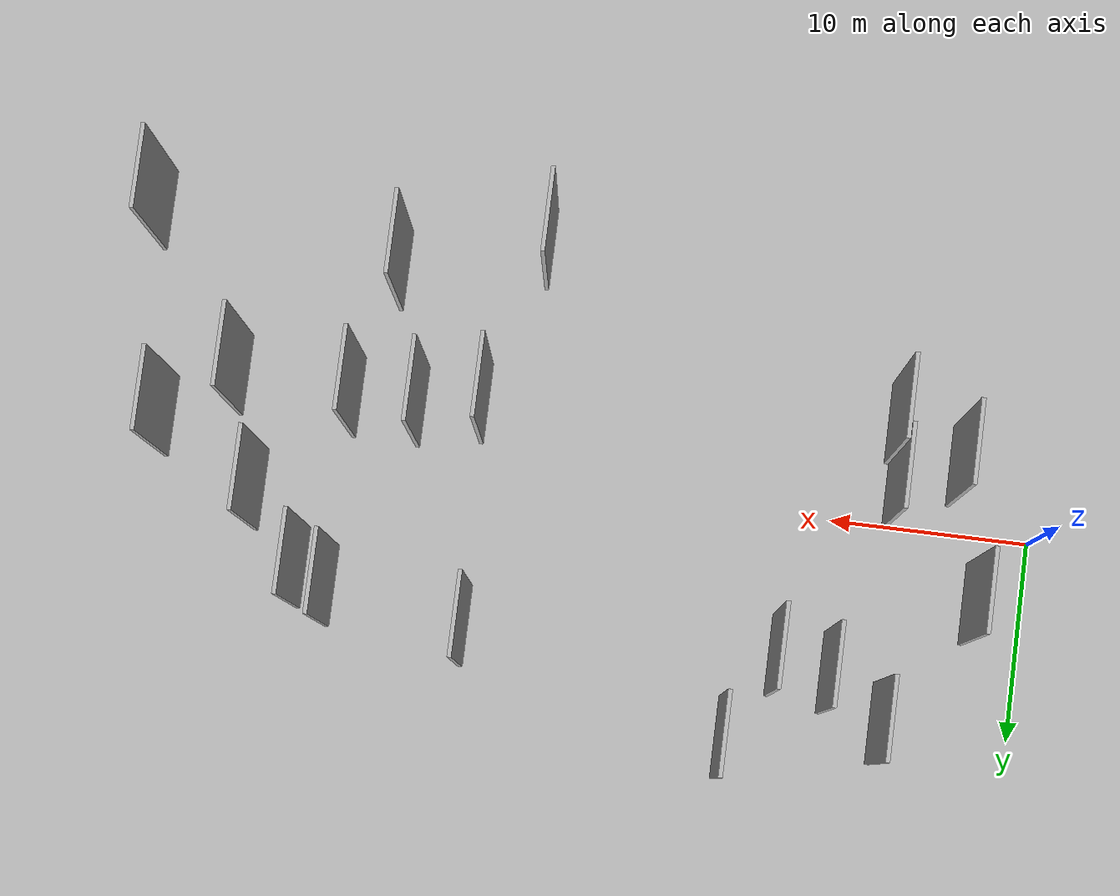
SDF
<?xml version="1.0" encoding="utf-8"?>

<sdf version="1.6">

   <world name="default">

      <gui fullscreen="0">

         <camera name="user_camera">

            <pose>-15 0 4.57585 0 0 0</pose>

            <view_controller>orbit</view_controller>

         </camera>

      </gui>

      <scene>

         <sky>

           <clouds>

             <speed>12</speed>

           </clouds>

         </sky>

         <ambient>0.4 0.4 0.4 1</ambient>

         <background>0.7 0.7 0.7 1</background>

         <shadows>1</shadows>

      </scene>

      <gravity>0 0 -9.8066</gravity>

      <magnetic_field>6e-06 2.3e-05 -4.2e-05</magnetic_field>

      <physics default="0" name="default_physics" type="ode">

         <ode>

            <solver>

               <type>quick</type>

               <iters>10</iters>

               <sor>1.0</sor>

               <use_dynamic_moi_rescaling>0</use_dynamic_moi_rescaling>

            </solver>

            <constraints>

               <cfm>0</cfm>

               <erp>0.2</erp>

               <contact_max_correcting_vel>100</contact_max_correcting_vel>

               <contact_surface_layer>0.001</contact_surface_layer>

            </constraints>

         </ode>

         <max_step_size>0.004</max_step_size>

         <real_time_factor>1</real_time_factor>

         <real_time_update_rate>250</real_time_update_rate>

      </physics>

      <light name="sun" type="directional">

         <cast_shadows>1</cast_shadows>

         <pose>0 0 10 0 0 0</pose>

         <diffuse>0.8 0.8 0.8 1</diffuse>

         <specular>0.2 0.2 0.2 1</specular>

         <attenuation>

            <range>1000</range>

            <constant>0.9</constant>

            <linear>0.01</linear>

            <quadratic>0.001</quadratic>

         </attenuation>

         <direction>-0.5 0.1 -0.9</direction>

      </light>

      <include>

         <name>ground_plane_1</name>

         <uri>model://HANNAS_ground_plane</uri>

         <pose>0 0 0  0 0 0</pose>

      </include>

      <include>

         <name>ground_plane_2</name>

         <uri>model://HANNAS_ground_plane</uri>

         <pose>100 0 0  0 0 0</pose>

      </include>

      <model name="HANNAS_wall_1">

         <static>1</static>

         <pose frame="">27.7852 -3.1588 5.0 0.000000 0.000000 1.570796</pose>

         <link name="link">

            <pose frame="">0 0 5.00 0 0 0</pose>

            <collision name="collision">

               <geometry>

                  <box>

                     <size>4.00 0.2 10.00</size>

                  </box>

               </geometry>

               <max_contacts>10</max_contacts>

               <surface>

                  <contact>

                     <ode/>

                  </contact>

                  <bounce/>

                  <friction>

                     <torsional>

                        <ode/>

                     </torsional>

                     <ode/>

                  </friction>

               </surface>

            </collision>

            <visual name="visual">

               <cast_shadows>0</cast_shadows>

               <geometry>

                  <box>

                     <size>4.00 0.2 10.00</size>

                  </box>

               </geometry>

               <material>

                  <script>

                     <uri>model://HANNAS_wall/materials/scripts</uri>

                     <uri>model://HANNAS_wall/materials/textures</uri>

                     <name>vrc/HANNAS_wall</name>

                  </script>

               </material>

            </visual>

            <self_collide>0</self_collide>

            <enable_wind>0</enable_wind>

            <kinematic>0</kinematic>

         </link>

      </model>

      <model name="HANNAS_wall_2">

         <static>1</static>

         <pose frame="">14.6795 11.6521 5.0 0.000000 0.000000 1.570796</pose>

         <link name="link">

            <pose frame="">0 0 5.00 0 0 0</pose>

            <collision name="collision">

               <geometry>

                  <box>

                     <size>4.00 0.2 10.00</size>

                  </box>

               </geometry>

               <max_contacts>10</max_contacts>

               <surface>

                  <contact>

                     <ode/>

                  </contact>

                  <bounce/>

                  <friction>

                     <torsional>

                        <ode/>

                     </torsional>

                     <ode/>

                  </friction>

               </surface>

            </collision>

            <visual name="visual">

               <cast_shadows>0</cast_shadows>

               <geometry>

                  <box>

                     <size>4.00 0.2 10.00</size>

                  </box>

               </geometry>

               <material>

                  <script>

                     <uri>model://HANNAS_wall/materials/scripts</uri>

                     <uri>model://HANNAS_wall/materials/textures</uri>

                     <name>vrc/HANNAS_wall</name>

                  </script>

               </material>

            </visual>

            <self_collide>0</self_collide>

            <enable_wind>0</enable_wind>

            <kinematic>0</kinematic>

         </link>

      </model>

      <model name="HANNAS_wall_3">

         <static>1</static>

         <pose frame="">30.8606 -2.6154 5.0 0.000000 0.000000 1.570796</pose>

         <link name="link">

            <pose frame="">0 0 5.00 0 0 0</pose>

            <collision name="collision">

               <geometry>

                  <box>

                     <size>4.00 0.2 10.00</size>

                  </box>

               </geometry>

               <max_contacts>10</max_contacts>

               <surface>

                  <contact>

                     <ode/>

                  </contact>

                  <bounce/>

                  <friction>

                     <torsional>

                        <ode/>

                     </torsional>

                     <ode/>

                  </friction>

               </surface>

            </collision>

            <visual name="visual">

               <cast_shadows>0</cast_shadows>

               <geometry>

                  <box>

                     <size>4.00 0.2 10.00</size>

                  </box>

               </geometry>

               <material>

                  <script>

                     <uri>model://HANNAS_wall/materials/scripts</uri>

                     <uri>model://HANNAS_wall/materials/textures</uri>

                     <name>vrc/HANNAS_wall</name>

                  </script>

               </material>

            </visual>

            <self_collide>0</self_collide>

            <enable_wind>0</enable_wind>

            <kinematic>0</kinematic>

         </link>

      </model>

      <model name="HANNAS_wall_4">

         <static>1</static>

         <pose frame="">7.9824 -4.5990 5.0 0.000000 0.000000 1.570796</pose>

         <link name="link">

            <pose frame="">0 0 5.00 0 0 0</pose>

            <collision name="collision">

               <geometry>

                  <box>

                     <size>4.00 0.2 10.00</size>

                  </box>

               </geometry>

               <max_contacts>10</max_contacts>

               <surface>

                  <contact>

                     <ode/>

                  </contact>

                  <bounce/>

                  <friction>

                     <torsional>

                        <ode/>

                     </torsional>

                     <ode/>

                  </friction>

               </surface>

            </collision>

            <visual name="visual">

               <cast_shadows>0</cast_shadows>

               <geometry>

                  <box>

                     <size>4.00 0.2 10.00</size>

                  </box>

               </geometry>

               <material>

                  <script>

                     <uri>model://HANNAS_wall/materials/scripts</uri>

                     <uri>model://HANNAS_wall/materials/textures</uri>

                     <name>vrc/HANNAS_wall</name>

                  </script>

               </material>

            </visual>

            <self_collide>0</self_collide>

            <enable_wind>0</enable_wind>

            <kinematic>0</kinematic>

         </link>

      </model>

      <model name="HANNAS_wall_5">

         <static>1</static>

         <pose frame="">4.7802 -2.8742 5.0 0.000000 0.000000 1.570796</pose>

         <link name="link">

            <pose frame="">0 0 5.00 0 0 0</pose>

            <collision name="collision">

               <geometry>

                  <box>

                     <size>4.00 0.2 10.00</size>

                  </box>

               </geometry>

               <max_contacts>10</max_contacts>

               <surface>

                  <contact>

                     <ode/>

                  </contact>

                  <bounce/>

                  <friction>

                     <torsional>

                        <ode/>

                     </torsional>

                     <ode/>

                  </friction>

               </surface>

            </collision>

            <visual name="visual">

               <cast_shadows>0</cast_shadows>

               <geometry>

                  <box>

                     <size>4.00 0.2 10.00</size>

                  </box>

               </geometry>

               <material>

                  <script>

                     <uri>model://HANNAS_wall/materials/scripts</uri>

                     <uri>model://HANNAS_wall/materials/textures</uri>

                     <name>vrc/HANNAS_wall</name>

                  </script>

               </material>

            </visual>

            <self_collide>0</self_collide>

            <enable_wind>0</enable_wind>

            <kinematic>0</kinematic>

         </link>

      </model>

      <model name="HANNAS_wall_6">

         <static>1</static>

         <pose frame="">34.1191 6.6470 5.0 0.000000 0.000000 1.570796</pose>

         <link name="link">

            <pose frame="">0 0 5.00 0 0 0</pose>

            <collision name="collision">

               <geometry>

                  <box>

                     <size>4.00 0.2 10.00</size>

                  </box>

               </geometry>

               <max_contacts>10</max_contacts>

               <surface>

                  <contact>

                     <ode/>

                  </contact>

                  <bounce/>

                  <friction>

                     <torsional>

                        <ode/>

                     </torsional>

                     <ode/>

                  </friction>

               </surface>

            </collision>

            <visual name="visual">

               <cast_shadows>0</cast_shadows>

               <geometry>

                  <box>

                     <size>4.00 0.2 10.00</size>

                  </box>

               </geometry>

               <material>

                  <script>

                     <uri>model://HANNAS_wall/materials/scripts</uri>

                     <uri>model://HANNAS_wall/materials/textures</uri>

                     <name>vrc/HANNAS_wall</name>

                  </script>

               </material>

            </visual>

            <self_collide>0</self_collide>

            <enable_wind>0</enable_wind>

            <kinematic>0</kinematic>

         </link>

      </model>

      <model name="HANNAS_wall_7">

         <static>1</static>

         <pose frame="">7.3207 10.0780 5.0 0.000000 0.000000 1.570796</pose>

         <link name="link">

            <pose frame="">0 0 5.00 0 0 0</pose>

            <collision name="collision">

               <geometry>

                  <box>

                     <size>4.00 0.2 10.00</size>

                  </box>

               </geometry>

               <max_contacts>10</max_contacts>

               <surface>

                  <contact>

                     <ode/>

                  </contact>

                  <bounce/>

                  <friction>

                     <torsional>

                        <ode/>

                     </torsional>

                     <ode/>

                  </friction>

               </surface>

            </collision>

            <visual name="visual">

               <cast_shadows>0</cast_shadows>

               <geometry>

                  <box>

                     <size>4.00 0.2 10.00</size>

                  </box>

               </geometry>

               <material>

                  <script>

                     <uri>model://HANNAS_wall/materials/scripts</uri>

                     <uri>model://HANNAS_wall/materials/textures</uri>

                     <name>vrc/HANNAS_wall</name>

                  </script>

               </material>

            </visual>

            <self_collide>0</self_collide>

            <enable_wind>0</enable_wind>

            <kinematic>0</kinematic>

         </link>

      </model>

      <model name="HANNAS_wall_8">

         <static>1</static>

         <pose frame="">32.5476 -9.2525 5.0 0.000000 0.000000 1.570796</pose>

         <link name="link">

            <pose frame="">0 0 5.00 0 0 0</pose>

            <collision name="collision">

               <geometry>

                  <box>

                     <size>4.00 0.2 10.00</size>

                  </box>

               </geometry>

               <max_contacts>10</max_contacts>

               <surface>

                  <contact>

                     <ode/>

                  </contact>

                  <bounce/>

                  <friction>

                     <torsional>

                        <ode/>

                     </torsional>

                     <ode/>

                  </friction>

               </surface>

            </collision>

            <visual name="visual">

               <cast_shadows>0</cast_shadows>

               <geometry>

                  <box>

                     <size>4.00 0.2 10.00</size>

                  </box>

               </geometry>

               <material>

                  <script>

                     <uri>model://HANNAS_wall/materials/scripts</uri>

                     <uri>model://HANNAS_wall/materials/textures</uri>

                     <name>vrc/HANNAS_wall</name>

                  </script>

               </material>

            </visual>

            <self_collide>0</self_collide>

            <enable_wind>0</enable_wind>

            <kinematic>0</kinematic>

         </link>

      </model>

      <model name="HANNAS_wall_9">

         <static>1</static>

         <pose frame="">35.6301 5.9257 5.0 0.000000 0.000000 1.570796</pose>

         <link name="link">

            <pose frame="">0 0 5.00 0 0 0</pose>

            <collision name="collision">

               <geometry>

                  <box>

                     <size>4.00 0.2 10.00</size>

                  </box>

               </geometry>

               <max_contacts>10</max_contacts>

               <surface>

                  <contact>

                     <ode/>

                  </contact>

                  <bounce/>

                  <friction>

                     <torsional>

                        <ode/>

                     </torsional>

                     <ode/>

                  </friction>

               </surface>

            </collision>

            <visual name="visual">

               <cast_shadows>0</cast_shadows>

               <geometry>

                  <box>

                     <size>4.00 0.2 10.00</size>

                  </box>

               </geometry>

               <material>

                  <script>

                     <uri>model://HANNAS_wall/materials/scripts</uri>

                     <uri>model://HANNAS_wall/materials/textures</uri>

                     <name>vrc/HANNAS_wall</name>

                  </script>

               </material>

            </visual>

            <self_collide>0</self_collide>

            <enable_wind>0</enable_wind>

            <kinematic>0</kinematic>

         </link>

      </model>

      <model name="HANNAS_wall_10">

         <static>1</static>

         <pose frame="">38.1619 2.3968 5.0 0.000000 0.000000 1.570796</pose>

         <link name="link">

            <pose frame="">0 0 5.00 0 0 0</pose>

            <collision name="collision">

               <geometry>

                  <box>

                     <size>4.00 0.2 10.00</size>

                  </box>

               </geometry>

               <max_contacts>10</max_contacts>

               <surface>

                  <contact>

                     <ode/>

                  </contact>

                  <bounce/>

                  <friction>

                     <torsional>

                        <ode/>

                     </torsional>

                     <ode/>

                  </friction>

               </surface>

            </collision>

            <visual name="visual">

               <cast_shadows>0</cast_shadows>

               <geometry>

                  <box>

                     <size>4.00 0.2 10.00</size>

                  </box>

               </geometry>

               <material>

                  <script>

                     <uri>model://HANNAS_wall/materials/scripts</uri>

                     <uri>model://HANNAS_wall/materials/textures</uri>

                     <name>vrc/HANNAS_wall</name>

                  </script>

               </material>

            </visual>

            <self_collide>0</self_collide>

            <enable_wind>0</enable_wind>

            <kinematic>0</kinematic>

         </link>

      </model>

      <model name="HANNAS_wall_11">

         <static>1</static>

         <pose frame="">27.4184 7.7928 5.0 0.000000 0.000000 1.570796</pose>

         <link name="link">

            <pose frame="">0 0 5.00 0 0 0</pose>

            <collision name="collision">

               <geometry>

                  <box>

                     <size>4.00 0.2 10.00</size>

                  </box>

               </geometry>

               <max_contacts>10</max_contacts>

               <surface>

                  <contact>

                     <ode/>

                  </contact>

                  <bounce/>

                  <friction>

                     <torsional>

                        <ode/>

                     </torsional>

                     <ode/>

                  </friction>

               </surface>

            </collision>

            <visual name="visual">

               <cast_shadows>0</cast_shadows>

               <geometry>

                  <box>

                     <size>4.00 0.2 10.00</size>

                  </box>

               </geometry>

               <material>

                  <script>

                     <uri>model://HANNAS_wall/materials/scripts</uri>

                     <uri>model://HANNAS_wall/materials/textures</uri>

                     <name>vrc/HANNAS_wall</name>

                  </script>

               </material>

            </visual>

            <self_collide>0</self_collide>

            <enable_wind>0</enable_wind>

            <kinematic>0</kinematic>

         </link>

      </model>

      <model name="HANNAS_wall_12">

         <static>1</static>

         <pose frame="">44.5303 -10.8492 5.0 0.000000 0.000000 1.570796</pose>

         <link name="link">

            <pose frame="">0 0 5.00 0 0 0</pose>

            <collision name="collision">

               <geometry>

                  <box>

                     <size>4.00 0.2 10.00</size>

                  </box>

               </geometry>

               <max_contacts>10</max_contacts>

               <surface>

                  <contact>

                     <ode/>

                  </contact>

                  <bounce/>

                  <friction>

                     <torsional>

                        <ode/>

                     </torsional>

                     <ode/>

                  </friction>

               </surface>

            </collision>

            <visual name="visual">

               <cast_shadows>0</cast_shadows>

               <geometry>

                  <box>

                     <size>4.00 0.2 10.00</size>

                  </box>

               </geometry>

               <material>

                  <script>

                     <uri>model://HANNAS_wall/materials/scripts</uri>

                     <uri>model://HANNAS_wall/materials/textures</uri>

                     <name>vrc/HANNAS_wall</name>

                  </script>

               </material>

            </visual>

            <self_collide>0</self_collide>

            <enable_wind>0</enable_wind>

            <kinematic>0</kinematic>

         </link>

      </model>

      <model name="HANNAS_wall_13">

         <static>1</static>

         <pose frame="">9.9602 7.9345 5.0 0.000000 0.000000 1.570796</pose>

         <link name="link">

            <pose frame="">0 0 5.00 0 0 0</pose>

            <collision name="collision">

               <geometry>

                  <box>

                     <size>4.00 0.2 10.00</size>

                  </box>

               </geometry>

               <max_contacts>10</max_contacts>

               <surface>

                  <contact>

                     <ode/>

                  </contact>

                  <bounce/>

                  <friction>

                     <torsional>

                        <ode/>

                     </torsional>

                     <ode/>

                  </friction>

               </surface>

            </collision>

            <visual name="visual">

               <cast_shadows>0</cast_shadows>

               <geometry>

                  <box>

                     <size>4.00 0.2 10.00</size>

                  </box>

               </geometry>

               <material>

                  <script>

                     <uri>model://HANNAS_wall/materials/scripts</uri>

                     <uri>model://HANNAS_wall/materials/textures</uri>

                     <name>vrc/HANNAS_wall</name>

                  </script>

               </material>

            </visual>

            <self_collide>0</self_collide>

            <enable_wind>0</enable_wind>

            <kinematic>0</kinematic>

         </link>

      </model>

      <model name="HANNAS_wall_14">

         <static>1</static>

         <pose frame="">3.4495 3.7831 5.0 0.000000 0.000000 1.570796</pose>

         <link name="link">

            <pose frame="">0 0 5.00 0 0 0</pose>

            <collision name="collision">

               <geometry>

                  <box>

                     <size>4.00 0.2 10.00</size>

                  </box>

               </geometry>

               <max_contacts>10</max_contacts>

               <surface>

                  <contact>

                     <ode/>

                  </contact>

                  <bounce/>

                  <friction>

                     <torsional>

                        <ode/>

                     </torsional>

                     <ode/>

                  </friction>

               </surface>

            </collision>

            <visual name="visual">

               <cast_shadows>0</cast_shadows>

               <geometry>

                  <box>

                     <size>4.00 0.2 10.00</size>

                  </box>

               </geometry>

               <material>

                  <script>

                     <uri>model://HANNAS_wall/materials/scripts</uri>

                     <uri>model://HANNAS_wall/materials/textures</uri>

                     <name>vrc/HANNAS_wall</name>

                  </script>

               </material>

            </visual>

            <self_collide>0</self_collide>

            <enable_wind>0</enable_wind>

            <kinematic>0</kinematic>

         </link>

      </model>

      <model name="HANNAS_wall_15">

         <static>1</static>

         <pose frame="">39.6820 -3.1317 5.0 0.000000 0.000000 1.570796</pose>

         <link name="link">

            <pose frame="">0 0 5.00 0 0 0</pose>

            <collision name="collision">

               <geometry>

                  <box>

                     <size>4.00 0.2 10.00</size>

                  </box>

               </geometry>

               <max_contacts>10</max_contacts>

               <surface>

                  <contact>

                     <ode/>

                  </contact>

                  <bounce/>

                  <friction>

                     <torsional>

                        <ode/>

                     </torsional>

                     <ode/>

                  </friction>

               </surface>

            </collision>

            <visual name="visual">

               <cast_shadows>0</cast_shadows>

               <geometry>

                  <box>

                     <size>4.00 0.2 10.00</size>

                  </box>

               </geometry>

               <material>

                  <script>

                     <uri>model://HANNAS_wall/materials/scripts</uri>

                     <uri>model://HANNAS_wall/materials/textures</uri>

                     <name>vrc/HANNAS_wall</name>

                  </script>

               </material>

            </visual>

            <self_collide>0</self_collide>

            <enable_wind>0</enable_wind>

            <kinematic>0</kinematic>

         </link>

      </model>

      <model name="HANNAS_wall_16">

         <static>1</static>

         <pose frame="">34.0347 -2.7101 5.0 0.000000 0.000000 1.570796</pose>

         <link name="link">

            <pose frame="">0 0 5.00 0 0 0</pose>

            <collision name="collision">

               <geometry>

                  <box>

                     <size>4.00 0.2 10.00</size>

                  </box>

               </geometry>

               <max_contacts>10</max_contacts>

               <surface>

                  <contact>

                     <ode/>

                  </contact>

                  <bounce/>

                  <friction>

                     <torsional>

                        <ode/>

                     </torsional>

                     <ode/>

                  </friction>

               </surface>

            </collision>

            <visual name="visual">

               <cast_shadows>0</cast_shadows>

               <geometry>

                  <box>

                     <size>4.00 0.2 10.00</size>

                  </box>

               </geometry>

               <material>

                  <script>

                     <uri>model://HANNAS_wall/materials/scripts</uri>

                     <uri>model://HANNAS_wall/materials/textures</uri>

                     <name>vrc/HANNAS_wall</name>

                  </script>

               </material>

            </visual>

            <self_collide>0</self_collide>

            <enable_wind>0</enable_wind>

            <kinematic>0</kinematic>

         </link>

      </model>

      <model name="HANNAS_wall_17">

         <static>1</static>

         <pose frame="">43.0325 -0.6693 5.0 0.000000 0.000000 1.570796</pose>

         <link name="link">

            <pose frame="">0 0 5.00 0 0 0</pose>

            <collision name="collision">

               <geometry>

                  <box>

                     <size>4.00 0.2 10.00</size>

                  </box>

               </geometry>

               <max_contacts>10</max_contacts>

               <surface>

                  <contact>

                     <ode/>

                  </contact>

                  <bounce/>

                  <friction>

                     <torsional>

                        <ode/>

                     </torsional>

                     <ode/>

                  </friction>

               </surface>

            </collision>

            <visual name="visual">

               <cast_shadows>0</cast_shadows>

               <geometry>

                  <box>

                     <size>4.00 0.2 10.00</size>

                  </box>

               </geometry>

               <material>

                  <script>

                     <uri>model://HANNAS_wall/materials/scripts</uri>

                     <uri>model://HANNAS_wall/materials/textures</uri>

                     <name>vrc/HANNAS_wall</name>

                  </script>

               </material>

            </visual>

            <self_collide>0</self_collide>

            <enable_wind>0</enable_wind>

            <kinematic>0</kinematic>

         </link>

      </model>

      <model name="HANNAS_wall_18">

         <static>1</static>

         <pose frame="">25.5531 -11.1485 5.0 0.000000 0.000000 1.570796</pose>

         <link name="link">

            <pose frame="">0 0 5.00 0 0 0</pose>

            <collision name="collision">

               <geometry>

                  <box>

                     <size>4.00 0.2 10.00</size>

                  </box>

               </geometry>

               <max_contacts>10</max_contacts>

               <surface>

                  <contact>

                     <ode/>

                  </contact>

                  <bounce/>

                  <friction>

                     <torsional>

                        <ode/>

                     </torsional>

                     <ode/>

                  </friction>

               </surface>

            </collision>

            <visual name="visual">

               <cast_shadows>0</cast_shadows>

               <geometry>

                  <box>

                     <size>4.00 0.2 10.00</size>

                  </box>

               </geometry>

               <material>

                  <script>

                     <uri>model://HANNAS_wall/materials/scripts</uri>

                     <uri>model://HANNAS_wall/materials/textures</uri>

                     <name>vrc/HANNAS_wall</name>

                  </script>

               </material>

            </visual>

            <self_collide>0</self_collide>

            <enable_wind>0</enable_wind>

            <kinematic>0</kinematic>

         </link>

      </model>

      <model name="HANNAS_wall_19">

         <static>1</static>

         <pose frame="">12.5340 7.3959 5.0 0.000000 0.000000 1.570796</pose>

         <link name="link">

            <pose frame="">0 0 5.00 0 0 0</pose>

            <collision name="collision">

               <geometry>

                  <box>

                     <size>4.00 0.2 10.00</size>

                  </box>

               </geometry>

               <max_contacts>10</max_contacts>

               <surface>

                  <contact>

                     <ode/>

                  </contact>

                  <bounce/>

                  <friction>

                     <torsional>

                        <ode/>

                     </torsional>

                     <ode/>

                  </friction>

               </surface>

            </collision>

            <visual name="visual">

               <cast_shadows>0</cast_shadows>

               <geometry>

                  <box>

                     <size>4.00 0.2 10.00</size>

                  </box>

               </geometry>

               <material>

                  <script>

                     <uri>model://HANNAS_wall/materials/scripts</uri>

                     <uri>model://HANNAS_wall/materials/textures</uri>

                     <name>vrc/HANNAS_wall</name>

                  </script>

               </material>

            </visual>

            <self_collide>0</self_collide>

            <enable_wind>0</enable_wind>

            <kinematic>0</kinematic>

         </link>

      </model>

      <model name="HANNAS_wall_20">

         <static>1</static>

         <pose frame="">7.7598 -1.4241 5.0 0.000000 0.000000 1.570796</pose>

         <link name="link">

            <pose frame="">0 0 5.00 0 0 0</pose>

            <collision name="collision">

               <geometry>

                  <box>

                     <size>4.00 0.2 10.00</size>

                  </box>

               </geometry>

               <max_contacts>10</max_contacts>

               <surface>

                  <contact>

                     <ode/>

                  </contact>

                  <bounce/>

                  <friction>

                     <torsional>

                        <ode/>

                     </torsional>

                     <ode/>

                  </friction>

               </surface>

            </collision>

            <visual name="visual">

               <cast_shadows>0</cast_shadows>

               <geometry>

                  <box>

                     <size>4.00 0.2 10.00</size>

                  </box>

               </geometry>

               <material>

                  <script>

                     <uri>model://HANNAS_wall/materials/scripts</uri>

                     <uri>model://HANNAS_wall/materials/textures</uri>

                     <name>vrc/HANNAS_wall</name>

                  </script>

               </material>

            </visual>

            <self_collide>0</self_collide>

            <enable_wind>0</enable_wind>

            <kinematic>0</kinematic>

         </link>

      </model>

   </world>

</sdf>

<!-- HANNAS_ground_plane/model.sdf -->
<sdf version="1.4">
<model name="HANNAS_ground_plane">
  <static>true</static>
    <link name="link">
      <collision name="collision">
        <geometry>
          <plane>
            <normal>0 0 1</normal>
            <size>1000 1000</size>
          </plane>
        </geometry>
        <surface>
          <friction>
            <ode>
              <mu>100</mu>
              <mu2>50</mu2>
            </ode>
          </friction>
        </surface>
      </collision>
      <visual name="visual">
        <cast_shadows>false</cast_shadows>
        <geometry>
          <plane>
            <normal>0 0 1</normal>
            <size>1000 1000</size>
          </plane>
        </geometry>
        <material>
          <script>
            <uri>model://HANNAS_ground_plane/materials/scripts/HANNAS_ground_plane.material</uri>
	    <uri>model://HANNAS_ground_plane/materials/textures</uri>
            <name>HANNASGroundPlane/Image</name>
          </script>
        </material>
      </visual>
    </link>
  </model>
</sdf>
